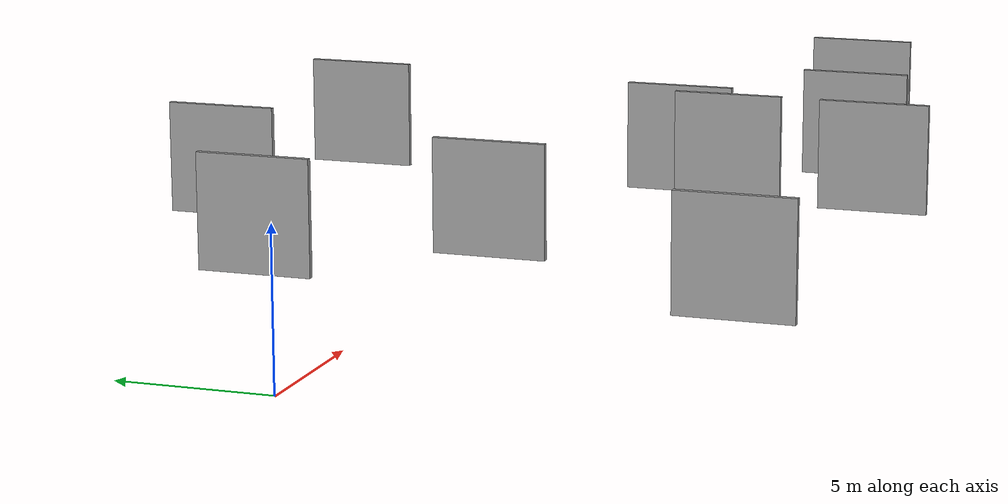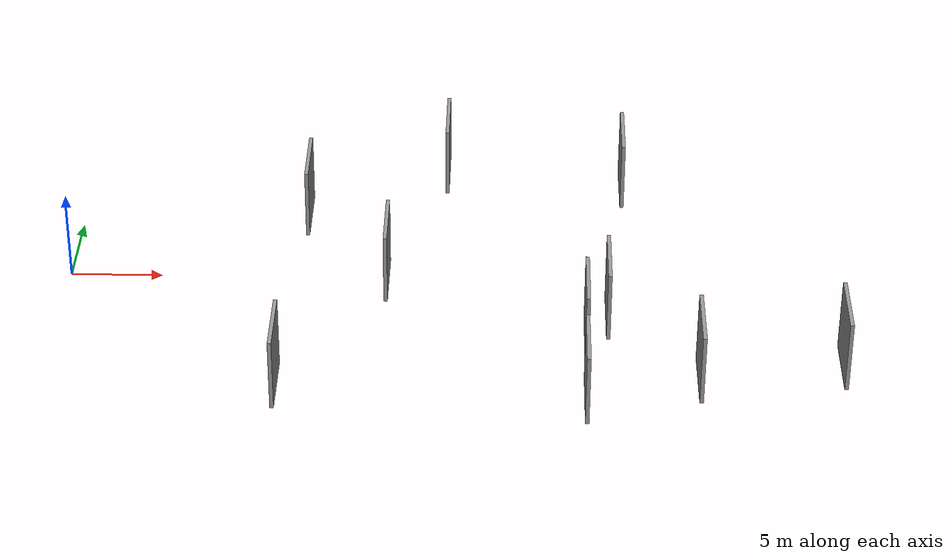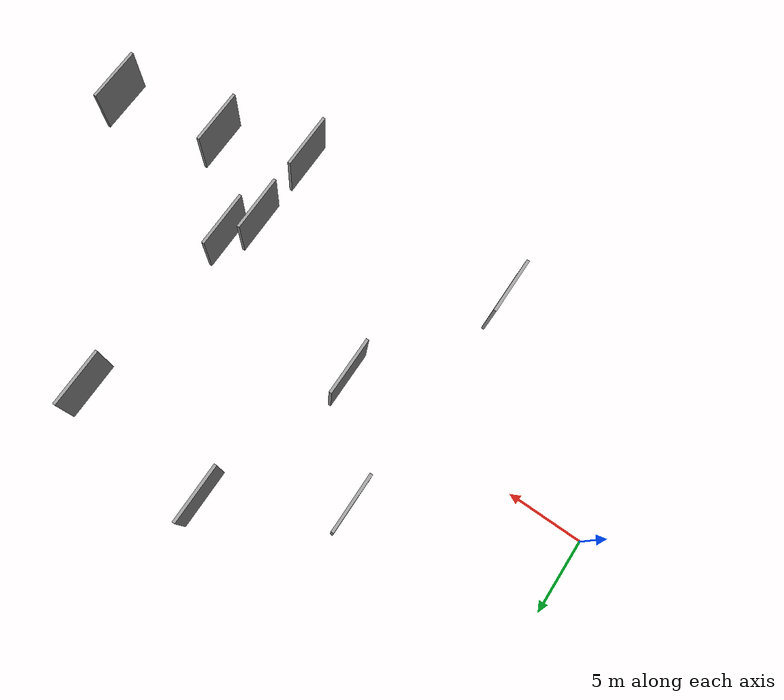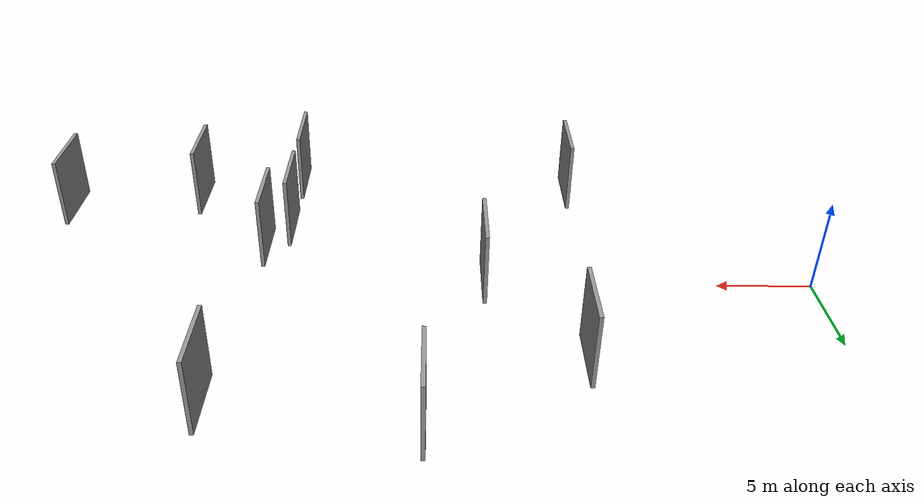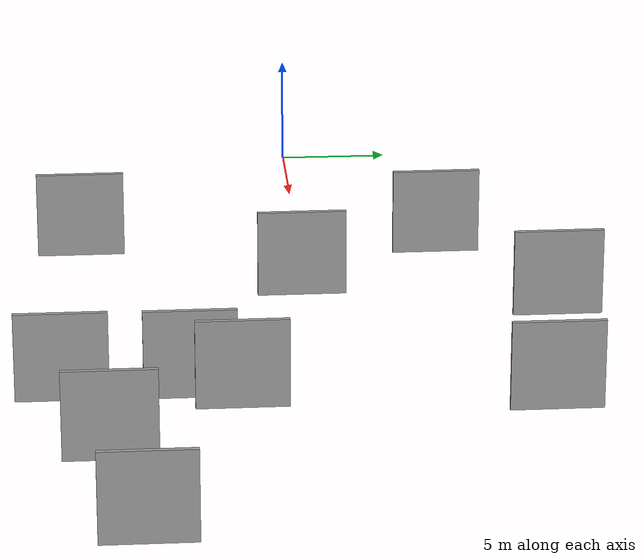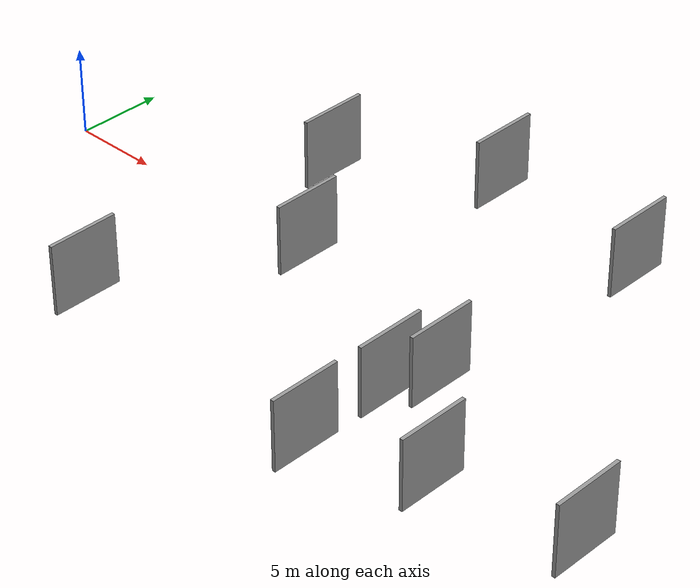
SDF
<sdf version="1.6">
 <world name="default">
  <scene>
   <sky><clouds><speed>12</speed></clouds></sky>
   <ambient>0.4 0.4 0.4 1</ambient>
   <background>0.7 0.7 0.7 1</background>
   <shadows>1</shadows>
  </scene>
  <gravity>0 0 -9.8066</gravity>
  <magnetic_field>6e-06 2.3e-05 -4.2e-05</magnetic_field>
  <physics default="0" name="default_physics" type="ode">
   <ode>
    <solver>
     <type>quick</type>
     <iters>10</iters>
     <sor>1.0</sor>
     <use_dynamic_moi_rescaling>0</use_dynamic_moi_rescaling>
    </solver>
    <constraints>
     <cfm>0</cfm>
     <erp>0.2</erp>
     <contact_max_correcting_vel>100</contact_max_correcting_vel>
     <contact_surface_layer>0.001</contact_surface_layer>
    </constraints>
   </ode>
   <max_step_size>0.004</max_step_size>
   <real_time_factor>1</real_time_factor>
   <real_time_update_rate>250</real_time_update_rate>
  </physics>
  <light name="sun" type="directional">
   <pose>0 0 10 0 0 0</pose>
   <diffuse>0.8 0.8 0.8 1</diffuse>
   <specular>0.2 0.2 0.2 1</specular>
   <attenuation>
    <range>1000</range>
    <constant>0.9</constant>
    <linear>0.01</linear>
    <quadratic>0.001</quadratic>
   </attenuation>
   <direction>-0.5 0.1 -0.9</direction>
  </light>
  <model name="grey_wall_1">
   <static>1</static>
   <pose>30.3798 9.6856 0.0 0.000000 0.000000 1.570796</pose>
   <link name="link">
    <pose>0 0 2.00 0 0 0</pose>
    <collision name="collision"><geometry><box><size>4.00 0.2 4.00</size></box></geometry></collision>
    <visual name="visual">
     <cast_shadows>0</cast_shadows>
     <geometry><box><size>4.00 0.2 4.00</size></box></geometry>
     <material>
      <script>
       <uri>model://grey_wall/materials/scripts</uri>
       <uri>model://grey_wall/materials/textures</uri>
       <name>vrc/grey_wall</name>
      </script>
     </material>
    </visual>
   </link>
  </model>
  <model name="grey_wall_2">
   <static>1</static>
   <pose>17.3515 -0.2187 0.0 0.000000 0.000000 1.570796</pose>
   <link name="link">
    <pose>0 0 2.00 0 0 0</pose>
    <collision name="collision"><geometry><box><size>4.00 0.2 4.00</size></box></geometry></collision>
    <visual name="visual">
     <cast_shadows>0</cast_shadows>
     <geometry><box><size>4.00 0.2 4.00</size></box></geometry>
     <material>
      <script>
       <uri>model://grey_wall/materials/scripts</uri>
       <uri>model://grey_wall/materials/textures</uri>
       <name>vrc/grey_wall</name>
      </script>
     </material>
    </visual>
   </link>
  </model>
  <model name="grey_wall_3">
   <static>1</static>
   <pose>12.6915 6.3363 0.0 0.000000 0.000000 1.570796</pose>
   <link name="link">
    <pose>0 0 2.00 0 0 0</pose>
    <collision name="collision"><geometry><box><size>4.00 0.2 4.00</size></box></geometry></collision>
    <visual name="visual">
     <cast_shadows>0</cast_shadows>
     <geometry><box><size>4.00 0.2 4.00</size></box></geometry>
     <material>
      <script>
       <uri>model://grey_wall/materials/scripts</uri>
       <uri>model://grey_wall/materials/textures</uri>
       <name>vrc/grey_wall</name>
      </script>
     </material>
    </visual>
   </link>
  </model>
  <model name="grey_wall_4">
   <static>1</static>
   <pose>20.4060 11.0426 0.0 0.000000 0.000000 1.570796</pose>
   <link name="link">
    <pose>0 0 2.00 0 0 0</pose>
    <collision name="collision"><geometry><box><size>4.00 0.2 4.00</size></box></geometry></collision>
    <visual name="visual">
     <cast_shadows>0</cast_shadows>
     <geometry><box><size>4.00 0.2 4.00</size></box></geometry>
     <material>
      <script>
       <uri>model://grey_wall/materials/scripts</uri>
       <uri>model://grey_wall/materials/textures</uri>
       <name>vrc/grey_wall</name>
      </script>
     </material>
    </visual>
   </link>
  </model>
  <model name="grey_wall_5">
   <static>1</static>
   <pose>29.3330 -3.5140 0.0 0.000000 0.000000 1.570796</pose>
   <link name="link">
    <pose>0 0 2.00 0 0 0</pose>
    <collision name="collision"><geometry><box><size>4.00 0.2 4.00</size></box></geometry></collision>
    <visual name="visual">
     <cast_shadows>0</cast_shadows>
     <geometry><box><size>4.00 0.2 4.00</size></box></geometry>
     <material>
      <script>
       <uri>model://grey_wall/materials/scripts</uri>
       <uri>model://grey_wall/materials/textures</uri>
       <name>vrc/grey_wall</name>
      </script>
     </material>
    </visual>
   </link>
  </model>
  <model name="grey_wall_6">
   <static>1</static>
   <pose>11.9639 -10.1588 0.0 0.000000 0.000000 1.570796</pose>
   <link name="link">
    <pose>0 0 2.00 0 0 0</pose>
    <collision name="collision"><geometry><box><size>4.00 0.2 4.00</size></box></geometry></collision>
    <visual name="visual">
     <cast_shadows>0</cast_shadows>
     <geometry><box><size>4.00 0.2 4.00</size></box></geometry>
     <material>
      <script>
       <uri>model://grey_wall/materials/scripts</uri>
       <uri>model://grey_wall/materials/textures</uri>
       <name>vrc/grey_wall</name>
      </script>
     </material>
    </visual>
   </link>
  </model>
  <model name="grey_wall_7">
   <static>1</static>
   <pose>28.1675 -5.6698 0.0 0.000000 0.000000 1.570796</pose>
   <link name="link">
    <pose>0 0 2.00 0 0 0</pose>
    <collision name="collision"><geometry><box><size>4.00 0.2 4.00</size></box></geometry></collision>
    <visual name="visual">
     <cast_shadows>0</cast_shadows>
     <geometry><box><size>4.00 0.2 4.00</size></box></geometry>
     <material>
      <script>
       <uri>model://grey_wall/materials/scripts</uri>
       <uri>model://grey_wall/materials/textures</uri>
       <name>vrc/grey_wall</name>
      </script>
     </material>
    </visual>
   </link>
  </model>
  <model name="grey_wall_8">
   <static>1</static>
   <pose>28.0998 -11.1142 0.0 0.000000 0.000000 1.570796</pose>
   <link name="link">
    <pose>0 0 2.00 0 0 0</pose>
    <collision name="collision"><geometry><box><size>4.00 0.2 4.00</size></box></geometry></collision>
    <visual name="visual">
     <cast_shadows>0</cast_shadows>
     <geometry><box><size>4.00 0.2 4.00</size></box></geometry>
     <material>
      <script>
       <uri>model://grey_wall/materials/scripts</uri>
       <uri>model://grey_wall/materials/textures</uri>
       <name>vrc/grey_wall</name>
      </script>
     </material>
    </visual>
   </link>
  </model>
  <model name="grey_wall_9">
   <static>1</static>
   <pose>41.5501 -7.7935 0.0 0.000000 0.000000 1.570796</pose>
   <link name="link">
    <pose>0 0 2.00 0 0 0</pose>
    <collision name="collision"><geometry><box><size>4.00 0.2 4.00</size></box></geometry></collision>
    <visual name="visual">
     <cast_shadows>0</cast_shadows>
     <geometry><box><size>4.00 0.2 4.00</size></box></geometry>
     <material>
      <script>
       <uri>model://grey_wall/materials/scripts</uri>
       <uri>model://grey_wall/materials/textures</uri>
       <name>vrc/grey_wall</name>
      </script>
     </material>
    </visual>
   </link>
  </model>
  <model name="grey_wall_10">
   <static>1</static>
   <pose>34.0004 -9.1536 0.0 0.000000 0.000000 1.570796</pose>
   <link name="link">
    <pose>0 0 2.00 0 0 0</pose>
    <collision name="collision"><geometry><box><size>4.00 0.2 4.00</size></box></geometry></collision>
    <visual name="visual">
     <cast_shadows>0</cast_shadows>
     <geometry><box><size>4.00 0.2 4.00</size></box></geometry>
     <material>
      <script>
       <uri>model://grey_wall/materials/scripts</uri>
       <uri>model://grey_wall/materials/textures</uri>
       <name>vrc/grey_wall</name>
      </script>
     </material>
    </visual>
   </link>
  </model>
 </world>
</sdf>
